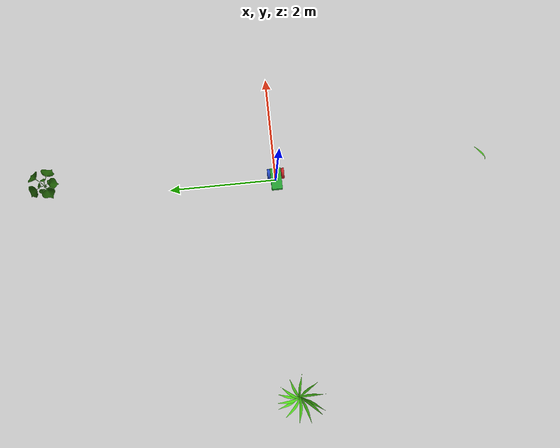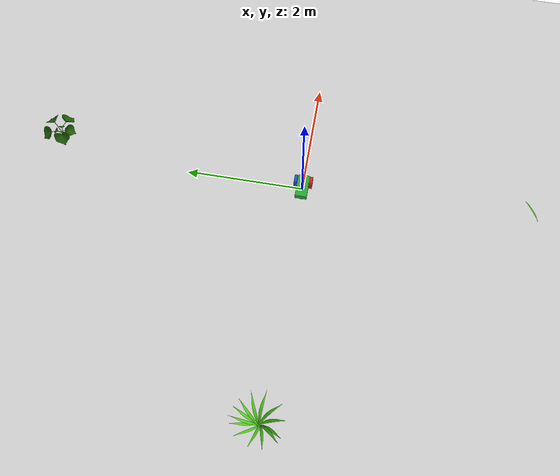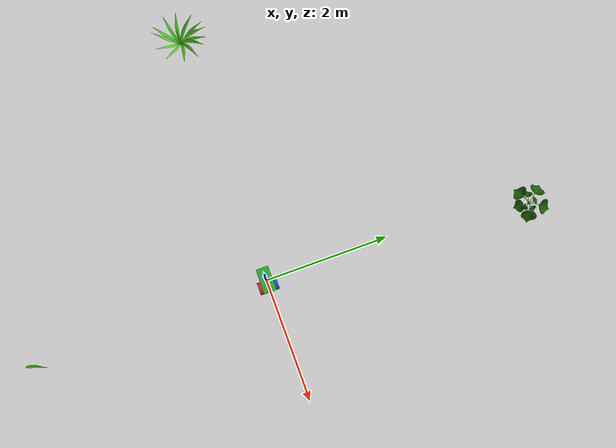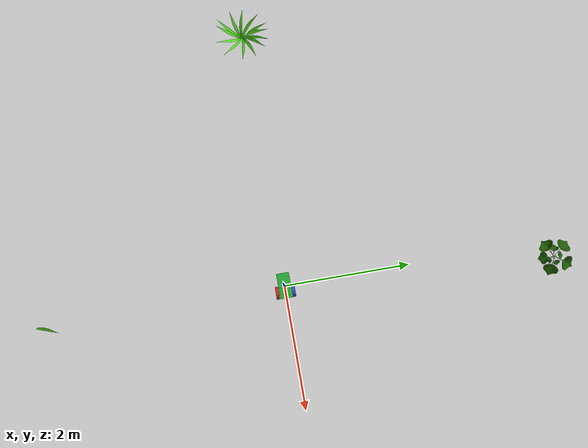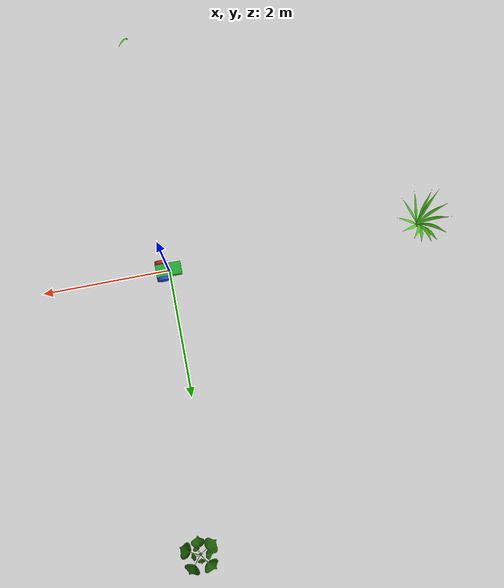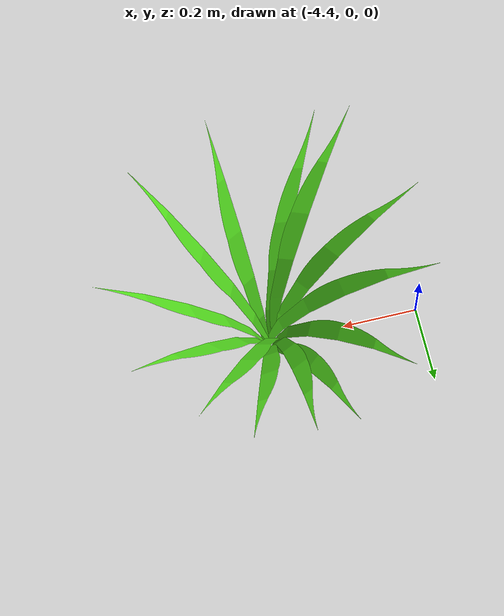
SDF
<sdf version="1.4">
 <world name="default">
  <include><uri>model://my_ground_plane</uri></include>
  <include><uri>model://sun</uri></include>
  <include><uri>model://plant_2</uri><pose>-4 0 0 0 0 0</pose></include>
  <include><uri>model://plant_3</uri><pose>0 4 0 0 0 0</pose></include>
  <include><uri>model://plant_2_single</uri><pose>0 -4 0 0 0 0</pose></include>
  <include><uri>model://simple_vehicle</uri><name>simple_vehicle1</name></include>
 </world>
</sdf>

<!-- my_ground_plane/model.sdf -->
<sdf version="1.7">
<model name="my_ground_plane">
  <static>true</static>
    <link name="link">
      <collision name="collision">
        <geometry>
          <plane>
            <normal>0 0 1</normal>
            <size>20 20</size>
          </plane>
        </geometry>
        <surface>
          <friction>
            <ode>
              <mu>100</mu>
              <mu2>50</mu2>
            </ode>
          </friction>
        </surface>
      </collision>
      <visual name="visual">
        <cast_shadows>false</cast_shadows>
        <geometry>
          <plane>
            <normal>0 0 1</normal>
            <size>20 20</size>
          </plane>
        </geometry>
        <material>
          <script>
            <uri>model://my_ground_plane/materials/scripts</uri>
            <uri>model://my_ground_plane/materials/textures/</uri>
            <name>MyGroundPlane/Image</name>
          </script>
        </material>
      </visual>
    </link>
  </model>
</sdf>

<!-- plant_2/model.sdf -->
<sdf version='1.6'>
  <model name='plant_2'>
    <link name='link_2'>
      <pose frame=''>-0.001376 0.005605 -0.013505 0 0 -1.02494</pose>
      <inertial>
        <mass>1</mass>
        <inertia>
          <ixx>0.166667</ixx>
          <ixy>0</ixy>
          <ixz>0</ixz>
          <iyy>0.166667</iyy>
          <iyz>0</iyz>
          <izz>0.166667</izz>
        </inertia>
        <pose frame=''>0 0 0 0 -0 0</pose>
      </inertial>
      <gravity>1</gravity>
      <self_collide>0</self_collide>
      <kinematic>0</kinematic>
      <visual name='visual'>
        <pose frame=''>0 0 0 0 -0 0</pose>
        <geometry>
          <mesh>
            <uri>model://plant_2/meshes/leaf2.dae</uri>
            <scale>1 1 1</scale>
          </mesh>
        </geometry>
        <material>
          <lighting>1</lighting>
          <script>
            <uri>file://media/materials/scripts/gazebo.material</uri>
            <name>Gazebo/Grey</name>
          </script>
          <ambient>0.329 0.87 0.117 1</ambient>
          <diffuse>0.329 0.87 0.117 1</diffuse>
          <specular>0.01 0.01 0.01 1</specular>
          <emissive>0 0 0 1</emissive>
          <shader type='vertex'>
            <normal_map>__default__</normal_map>
          </shader>
        </material>
        <cast_shadows>1</cast_shadows>
        <transparency>0</transparency>
      </visual>
      <collision name='collision'>
        <laser_retro>0</laser_retro>
        <max_contacts>10</max_contacts>
        <pose frame=''>0 0 0 0 -0 0</pose>
        <geometry>
          <mesh>
            <uri>model://plant_2/meshes/leaf2.dae</uri>
            <scale>1 1 1</scale>
          </mesh>
        </geometry>
         </collision>
    </link>
    <link name='link_2_clone'>
      <pose frame=''>-0.010482 -0.011155 -0.013505 0 -0 0</pose>
          <visual name='visual'>
        <pose frame=''>0 0 0 0 -0 0</pose>
        <geometry>
          <mesh>
            <uri>model://plant_2/meshes/leaf2.dae</uri>
            <scale>1 1 1</scale>
          </mesh>
        </geometry>
        <material>
          <lighting>1</lighting>
          <script>
            <uri>file://media/materials/scripts/gazebo.material</uri>
            <name>Gazebo/Grey</name>
          </script>
          <ambient>0.329 0.87 0.117 1</ambient>
          <diffuse>0.329 0.87 0.117 1</diffuse>
          <specular>0.01 0.01 0.01 1</specular>
          <emissive>0 0 0 1</emissive>
          <shader type='vertex'>
            <normal_map>__default__</normal_map>
          </shader>
        </material>
        <cast_shadows>1</cast_shadows>
        <transparency>0</transparency>
      </visual>
      <collision name='collision'>
        <laser_retro>0</laser_retro>
        <max_contacts>10</max_contacts>
        <pose frame=''>0 0 0 0 -0 0</pose>
        <geometry>
          <mesh>
            <uri>model://plant_2/meshes/leaf2.dae</uri>
            <scale>1 1 1</scale>
          </mesh>
        </geometry>

      </collision>
    </link>
    <link name='link_2_clone_0'>
      <pose frame=''>-0.021848 0.004608 0.021508 0 0 -1.38339</pose>

      <visual name='visual'>
        <pose frame=''>0 0 0 0 -0 0</pose>
        <geometry>
          <mesh>
            <uri>model://plant_2/meshes/leaf2.dae</uri>
            <scale>1 1 1</scale>
          </mesh>
        </geometry>
        <material>
          <lighting>1</lighting>
          <script>
            <uri>file://media/materials/scripts/gazebo.material</uri>
            <name>Gazebo/Grey</name>
          </script>
          <ambient>0.329 0.87 0.117 1</ambient>
          <diffuse>0.329 0.87 0.117 1</diffuse>
          <specular>0.01 0.01 0.01 1</specular>
          <emissive>0 0 0 1</emissive>
          <shader type='vertex'>
            <normal_map>__default__</normal_map>
          </shader>
        </material>
        <cast_shadows>1</cast_shadows>
        <transparency>0</transparency>
      </visual>
      <collision name='collision'>
        <laser_retro>0</laser_retro>
        <max_contacts>10</max_contacts>
        <pose frame=''>0 0 0 0 -0 0</pose>
        <geometry>
          <mesh>
            <uri>model://plant_2/meshes/leaf2.dae</uri>
            <scale>1 1 1</scale>
          </mesh>
        </geometry>

      </collision>
    </link>
    <link name='link_2_clone_clone'>
      <pose frame=''>-0.01336 0.002511 0.005363 0 0 -0.694659</pose>
         <visual name='visual'>
        <pose frame=''>0 0 0 0 -0 0</pose>
        <geometry>
          <mesh>
            <uri>model://plant_2/meshes/leaf2.dae</uri>
            <scale>1 1 1</scale>
          </mesh>
        </geometry>
        <material>
          <lighting>1</lighting>
          <script>
            <uri>file://media/materials/scripts/gazebo.material</uri>
            <name>Gazebo/Grey</name>
          </script>
          <ambient>0.329 0.87 0.117 1</ambient>
          <diffuse>0.329 0.87 0.117 1</diffuse>
          <specular>0.01 0.01 0.01 1</specular>
          <emissive>0 0 0 1</emissive>
          <shader type='vertex'>
            <normal_map>__default__</normal_map>
          </shader>
        </material>
        <cast_shadows>1</cast_shadows>
        <transparency>0</transparency>
      </visual>
      <collision name='collision'>
        <laser_retro>0</laser_retro>
        <max_contacts>10</max_contacts>
        <pose frame=''>0 0 0 0 -0 0</pose>
        <geometry>
          <mesh>
            <uri>model://plant_2/meshes/leaf2.dae</uri>
            <scale>1 1 1</scale>
          </mesh>
        </geometry>
         </collision>
    </link>
    <link name='link_2_clone_clone_0'>
      <pose frame=''>0.003499 -0.00937 -0.013505 0 -0 1.94467</pose>
         <visual name='visual'>
        <pose frame=''>0 0 0 0 -0 0</pose>
        <geometry>
          <mesh>
            <uri>model://plant_2/meshes/leaf2.dae</uri>
            <scale>1 1 1</scale>
          </mesh>
        </geometry>
        <material>
          <lighting>1</lighting>
          <script>
            <uri>file://media/materials/scripts/gazebo.material</uri>
            <name>Gazebo/Grey</name>
          </script>
          <ambient>0.329 0.87 0.117 1</ambient>
          <diffuse>0.329 0.87 0.117 1</diffuse>
          <specular>0.01 0.01 0.01 1</specular>
          <emissive>0 0 0 1</emissive>
          <shader type='vertex'>
            <normal_map>__default__</normal_map>
          </shader>
        </material>
        <cast_shadows>1</cast_shadows>
        <transparency>0</transparency>
      </visual>
      <collision name='collision'>
        <laser_retro>0</laser_retro>
        <max_contacts>10</max_contacts>
        <pose frame=''>0 0 0 0 -0 0</pose>
        <geometry>
          <mesh>
            <uri>model://plant_2/meshes/leaf2.dae</uri>
            <scale>1 1 1</scale>
          </mesh>
        </geometry>
        </collision>
    </link>
    <link name='link_2_clone_clone_0_clone'>
      <pose frame=''>0.015142 -0.010468 -0.013505 0 -0 0.664816</pose>
         <visual name='visual'>
        <pose frame=''>0 0 0 0 -0 0</pose>
        <geometry>
          <mesh>
            <uri>model://plant_2/meshes/leaf2.dae</uri>
            <scale>1 1 1</scale>
          </mesh>
        </geometry>
        <material>
          <lighting>1</lighting>
          <script>
            <uri>file://media/materials/scripts/gazebo.material</uri>
            <name>Gazebo/Grey</name>
          </script>
          <ambient>0.329 0.87 0.117 1</ambient>
          <diffuse>0.329 0.87 0.117 1</diffuse>
          <specular>0.01 0.01 0.01 1</specular>
          <emissive>0 0 0 1</emissive>
          <shader type='vertex'>
            <normal_map>__default__</normal_map>
          </shader>
        </material>
        <cast_shadows>1</cast_shadows>
        <transparency>0</transparency>
      </visual>
      <collision name='collision'>
        <laser_retro>0</laser_retro>
        <max_contacts>10</max_contacts>
        <pose frame=''>0 0 0 0 -0 0</pose>
        <geometry>
          <mesh>
            <uri>model://plant_2/meshes/leaf2.dae</uri>
            <scale>1 1 1</scale>
          </mesh>
        </geometry>
        </collision>
    </link>
    <link name='link_2_clone_clone_0_clone_0'>
      <pose frame=''>0.005268 -0.011592 -0.013505 0 -0 1.1754</pose>
        <visual name='visual'>
        <pose frame=''>0 0 0 0 -0 0</pose>
        <geometry>
          <mesh>
            <uri>model://plant_2/meshes/leaf2.dae</uri>
            <scale>1 1 1</scale>
          </mesh>
        </geometry>
        <material>
          <lighting>1</lighting>
          <script>
            <uri>file://media/materials/scripts/gazebo.material</uri>
            <name>Gazebo/Grey</name>
          </script>
          <ambient>0.329 0.87 0.117 1</ambient>
          <diffuse>0.329 0.87 0.117 1</diffuse>
          <specular>0.01 0.01 0.01 1</specular>
          <emissive>0 0 0 1</emissive>
          <shader type='vertex'>
            <normal_map>__default__</normal_map>
          </shader>
        </material>
        <cast_shadows>1</cast_shadows>
        <transparency>0</transparency>
      </visual>
      <collision name='collision'>
        <laser_retro>0</laser_retro>
        <max_contacts>10</max_contacts>
        <pose frame=''>0 0 0 0 -0 0</pose>
        <geometry>
          <mesh>
            <uri>model://plant_2/meshes/leaf2.dae</uri>
            <scale>1 1 1</scale>
          </mesh>
        </geometry>
         </collision>
    </link>
    <link name='link_2_clone_clone_0_clone_1'>
      <pose frame=''>0.01152 0.011389 -0.013505 0 -0 2.57921</pose>
       <visual name='visual'>
        <pose frame=''>0 0 0 0 -0 0</pose>
        <geometry>
          <mesh>
            <uri>model://plant_2/meshes/leaf2.dae</uri>
            <scale>1 1 1</scale>
          </mesh>
        </geometry>
        <material>
          <lighting>1</lighting>
          <script>
            <uri>file://media/materials/scripts/gazebo.material</uri>
            <name>Gazebo/Grey</name>
          </script>
          <ambient>0.329 0.87 0.117 1</ambient>
          <diffuse>0.329 0.87 0.117 1</diffuse>
          <specular>0.01 0.01 0.01 1</specular>
          <emissive>0 0 0 1</emissive>
          <shader type='vertex'>
            <normal_map>__default__</normal_map>
          </shader>
        </material>
        <cast_shadows>1</cast_shadows>
        <transparency>0</transparency>
      </visual>
      <collision name='collision'>
        <laser_retro>0</laser_retro>
        <max_contacts>10</max_contacts>
        <pose frame=''>0 0 0 0 -0 0</pose>
        <geometry>
          <mesh>
            <uri>model://plant_2/meshes/leaf2.dae</uri>
            <scale>1 1 1</scale>
          </mesh>
        </geometry>
      </collision>
    </link>
    <link name='link_2_clone_clone_0_clone_1_clone'>
      <pose frame=''>0.004356 0.008872 0.002073 0 -0 -2.39264</pose>
        <visual name='visual'>
        <pose frame=''>0 0 0 0 -0 0</pose>
        <geometry>
          <mesh>
            <uri>model://plant_2/meshes/leaf2.dae</uri>
            <scale>1 1 1</scale>
          </mesh>
        </geometry>
        <material>
          <lighting>1</lighting>
          <script>
            <uri>file://media/materials/scripts/gazebo.material</uri>
            <name>Gazebo/Grey</name>
          </script>
          <ambient>0.329 0.87 0.117 1</ambient>
          <diffuse>0.329 0.87 0.117 1</diffuse>
          <specular>0.01 0.01 0.01 1</specular>
          <emissive>0 0 0 1</emissive>
          <shader type='vertex'>
            <normal_map>__default__</normal_map>
          </shader>
        </material>
        <cast_shadows>1</cast_shadows>
        <transparency>0</transparency>
      </visual>
      <collision name='collision'>
        <laser_retro>0</laser_retro>
        <max_contacts>10</max_contacts>
        <pose frame=''>0 0 0 0 -0 0</pose>
        <geometry>
          <mesh>
            <uri>model://plant_2/meshes/leaf2.dae</uri>
            <scale>1 1 1</scale>
          </mesh>
        </geometry>
       </collision>
    </link>
    <link name='link_2_clone_clone_0_clone_1_clone_0'>
      <pose frame=''>-0.007339 0.006471 -0.013505 0 -0 -1.8484</pose>
        <visual name='visual'>
        <pose frame=''>0 0 0 0 -0 0</pose>
        <geometry>
          <mesh>
            <uri>model://plant_2/meshes/leaf2.dae</uri>
            <scale>1 1 1</scale>
          </mesh>
        </geometry>
        <material>
          <lighting>1</lighting>
          <script>
            <uri>file://media/materials/scripts/gazebo.material</uri>
            <name>Gazebo/Grey</name>
          </script>
          <ambient>0.329 0.87 0.117 1</ambient>
          <diffuse>0.329 0.87 0.117 1</diffuse>
          <specular>0.01 0.01 0.01 1</specular>
          <emissive>0 0 0 1</emissive>
          <shader type='vertex'>
            <normal_map>__default__</normal_map>
          </shader>
        </material>
        <cast_shadows>1</cast_shadows>
        <transparency>0</transparency>
      </visual>
      <collision name='collision'>
        <laser_retro>0</laser_retro>
        <max_contacts>10</max_contacts>
        <pose frame=''>0 0 0 0 -0 0</pose>
        <geometry>
          <mesh>
            <uri>model://plant_2/meshes/leaf2.dae</uri>
            <scale>1 1 1</scale>
          </mesh>
        </geometry>
       </collision>
    </link>
    <link name='link_2_clone_clone_0_clone_1_clone_1'>
      <pose frame=''>0.007948 0.011768 0.03025 0 -0 -3.12431</pose>
        <visual name='visual'>
        <pose frame=''>0 0 0 0 -0 0</pose>
        <geometry>
          <mesh>
            <uri>model://plant_2/meshes/leaf2.dae</uri>
            <scale>1 1 1</scale>
          </mesh>
        </geometry>
        <material>
          <lighting>1</lighting>
          <script>
            <uri>file://media/materials/scripts/gazebo.material</uri>
            <name>Gazebo/Grey</name>
          </script>
          <ambient>0.329 0.87 0.117 1</ambient>
          <diffuse>0.329 0.87 0.117 1</diffuse>
          <specular>0.01 0.01 0.01 1</specular>
          <emissive>0 0 0 1</emissive>
          <shader type='vertex'>
            <normal_map>__default__</normal_map>
          </shader>
        </material>
        <cast_shadows>1</cast_shadows>
        <transparency>0</transparency>
      </visual>
      <collision name='collision'>
        <laser_retro>0</laser_retro>
        <max_contacts>10</max_contacts>
        <pose frame=''>0 0 0 0 -0 0</pose>
        <geometry>
          <mesh>
            <uri>model://plant_2/meshes/leaf2.dae</uri>
            <scale>1 1 1</scale>
          </mesh>
        </geometry>
        </collision>
    </link>
    <link name='link_2_clone_clone_0_clone_2'>
      <pose frame=''>-0.002448 -0.020262 0.048804 0 -0 1.74321</pose>
         <visual name='visual'>
        <pose frame=''>0 0 0 0 -0 0</pose>
        <geometry>
          <mesh>
            <uri>model://plant_2/meshes/leaf2.dae</uri>
            <scale>1 1 1</scale>
          </mesh>
        </geometry>
        <material>
          <lighting>1</lighting>
          <script>
            <uri>file://media/materials/scripts/gazebo.material</uri>
            <name>Gazebo/Grey</name>
          </script>
          <ambient>0.329 0.87 0.117 1</ambient>
          <diffuse>0.329 0.87 0.117 1</diffuse>
          <specular>0.01 0.01 0.01 1</specular>
          <emissive>0 0 0 1</emissive>
          <shader type='vertex'>
            <normal_map>__default__</normal_map>
          </shader>
        </material>
        <cast_shadows>1</cast_shadows>
        <transparency>0</transparency>
      </visual>
      <collision name='collision'>
        <laser_retro>0</laser_retro>
        <max_contacts>10</max_contacts>
        <pose frame=''>0 0 0 0 -0 0</pose>
        <geometry>
          <mesh>
            <uri>model://plant_2/meshes/leaf2.dae</uri>
            <scale>1 1 1</scale>
          </mesh>
        </geometry>
       </collision>
    </link>
    <link name='link_2_clone_clone_clone'>
      <pose frame=''>0.009442 0.011493 -0.013505 0 0 -0.389083</pose>
         <visual name='visual'>
        <pose frame=''>0 0 0 0 -0 0</pose>
        <geometry>
          <mesh>
            <uri>model://plant_2/meshes/leaf2.dae</uri>
            <scale>1 1 1</scale>
          </mesh>
        </geometry>
        <material>
          <lighting>1</lighting>
          <script>
            <uri>file://media/materials/scripts/gazebo.material</uri>
            <name>Gazebo/Grey</name>
          </script>
          <ambient>0.329 0.87 0.117 1</ambient>
          <diffuse>0.329 0.87 0.117 1</diffuse>
          <specular>0.01 0.01 0.01 1</specular>
          <emissive>0 0 0 1</emissive>
          <shader type='vertex'>
            <normal_map>__default__</normal_map>
          </shader>
        </material>
        <cast_shadows>1</cast_shadows>
        <transparency>0</transparency>
      </visual>
      <collision name='collision'>
        <laser_retro>0</laser_retro>
        <max_contacts>10</max_contacts>
        <pose frame=''>0 0 0 0 -0 0</pose>
        <geometry>
          <mesh>
            <uri>model://plant_2/meshes/leaf2.dae</uri>
            <scale>1 1 1</scale>
          </mesh>
        </geometry>
        </collision>
    </link>
    <static>1</static>
    <allow_auto_disable>1</allow_auto_disable>
  </model>
</sdf>

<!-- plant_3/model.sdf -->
<sdf version='1.6'>
  <model name='plant_3'>
    <link name='link_1'>
      <pose frame=''>-0.00034 0 0 0 -0 0</pose>
        <visual name='visual'>
         <geometry>
          <mesh>
		<uri>model://plant_3/meshes/plant.dae</uri>
              <scale>1 1 1</scale>
          </mesh>
        </geometry>
        <material>
          <lighting>1</lighting>
           <ambient>0.109 0.345 0.015 1</ambient>
          <diffuse>0.109 0.345 0.015 1</diffuse>
          <specular>0.01 0.01 0.01 1</specular>
          <emissive>0 0 0 1</emissive>
          <shader type='vertex'>
            <normal_map>__default__</normal_map>
          </shader>
        </material>
        <cast_shadows>1</cast_shadows>
        <transparency>0</transparency>
      </visual>

    <collision name='collision'>
        <laser_retro>0</laser_retro>
        <max_contacts>10</max_contacts>
         <geometry>
          <mesh>
            <uri>model://plant_3/meshes/plant.dae</uri>
            <scale>1 1 1</scale>
          </mesh>
        </geometry>
      </collision>
    </link>
    <static>1</static>
    <allow_auto_disable>1</allow_auto_disable>
  </model>
</sdf>

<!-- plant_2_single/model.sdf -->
<sdf version='1.6'>
  <model name='plant_2_single'>
    <link name='link_2'>
      <pose frame=''>-0.001376 0.005605 -0.013505 0 0 -1.02494</pose>
      <inertial>
        <mass>1</mass>
        <inertia>
          <ixx>0.166667</ixx>
          <ixy>0</ixy>
          <ixz>0</ixz>
          <iyy>0.166667</iyy>
          <iyz>0</iyz>
          <izz>0.166667</izz>
        </inertia>
        <pose frame=''>0 0 0 0 -0 0</pose>
      </inertial>
      <gravity>1</gravity>
      <self_collide>0</self_collide>
      <kinematic>0</kinematic>
      <visual name='visual'>
        <pose frame=''>0 0 0 0 -0 0</pose>
        <geometry>
          <mesh>
            <uri>model://plant_2/meshes/leaf2.dae</uri>
            <scale>1 1 1</scale>
          </mesh>
        </geometry>
        <material>
          <lighting>1</lighting>
          <script>
            <uri>file://media/materials/scripts/gazebo.material</uri>
            <name>Gazebo/Grey</name>
          </script>
          <ambient>0.329 0.87 0.117 1</ambient>
          <diffuse>0.329 0.87 0.117 1</diffuse>
          <specular>0.01 0.01 0.01 1</specular>
          <emissive>0 0 0 1</emissive>
          <shader type='vertex'>
            <normal_map>__default__</normal_map>
          </shader>
        </material>
        <cast_shadows>1</cast_shadows>
        <transparency>0</transparency>
      </visual>
      <collision name='collision'>
        <laser_retro>0</laser_retro>
        <max_contacts>10</max_contacts>
        <pose frame=''>0 0 0 0 -0 0</pose>
        <geometry>
          <mesh>
            <uri>model://plant_2/meshes/leaf2.dae</uri>
            <scale>1 1 1</scale>
          </mesh>
        </geometry>
         </collision>
    </link>

    <static>1</static>
    <allow_auto_disable>1</allow_auto_disable>
  </model>
</sdf>

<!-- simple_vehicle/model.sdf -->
<sdf version='1.4'>
  <model name="simple_vehicle">
        <static>0</static>
        <!-- Give the base link a unique name -->
        <link name="vehicle_body">

            <!-- Offset the base by half the lenght of the cylinder -->
            <pose>0 0 0.1 0 0 0</pose>
            <inertial>
              <mass>1.0</mass>
              <inertia>
                <ixx>0.0006</ixx>
                <iyy>0.0006</iyy>
                <izz>0.0006</izz>
                <ixy>0</ixy>
                <ixz>0</ixz>
                <iyz>0</iyz>
              </inertia>
            </inertial>

            <collision name="vehicle_body_collision">
              <geometry>
        				<box>
        					<size>0.4 0.2 0.1</size>
        				</box>
        			</geometry>
                <surface>
		<friction>
		<ode>
		    <mu>0.0</mu>
		    <mu2>0.0</mu2>
		</ode>
		</friction>
		<contact>
		<ode>
		   <kp>1000000.0</kp>
		   <kd>1000000.0</kd>
		   <min_depth>0</min_depth>
		</ode>
		</contact>
	      </surface>
            </collision>

            <!-- The visual is mostly a copy of the collision -->
            <visual name="vehicle_body_visual">
              <geometry>
        				<box>
        					<size>0.4 0.2 0.1</size>
        				</box>
        			</geometry>
              <material>
                <script>
                  <uri>file://media/materials/scripts/gazebo.material</uri>
                  <name>Gazebo/Green</name>
                </script>
              </material>
            </visual>
            <collision name="caster_collision">
        			<pose>-0.15 0 -0.05 0 0 0</pose>
        			<geometry>
        				<sphere>
        					<radius>0.05</radius>
        				</sphere>
        			</geometry>
        		<surface>
        			<friction>
        				<ode>
        					<mu>0</mu>
        					<mu2>0</mu2>
        					<slip1>1.0</slip1>
        					<slip2>1.0</slip2>
        				</ode>
        			</friction>
        		</surface>
        	</collision>
        		<visual name="caster_visual">
        			<pose>-0.15 0 -0.05 0 0 0</pose>
        			<geometry>
        				<sphere>
        					<radius>0.05</radius>
        				</sphere>
        			</geometry>
        		</visual>
        </link>

        <!-- Give the base link a unique name -->
        <link name="left_wheel">

            <!-- Vertically offset the top cylinder by the length of the bottom
                cylinder and half the length of this cylinder. -->
            <pose>0.1 0.13 0.1 0 1.5707 1.5707</pose>

            <inertial>
              <mass>0.1</mass>
              <inertia>
                <ixx>2.33333333333e-05</ixx>
                <iyy>2.33333333333e-05</iyy>
                <izz>4.5e-05</izz>
                <ixy>0</ixy>
                <ixz>0</ixz>
                <iyz>0</iyz>
              </inertia>
            </inertial>

            <collision name="left_wheel_collision">
              <geometry>
                <cylinder>
                  <!-- Radius and length provided by Velodyne -->
                  <radius>0.1</radius>
                  <length>0.05</length>
                </cylinder>
              </geometry>
              <surface>
		<friction>
		<ode>
		    <mu>30.0</mu>
		    <mu2>30.0</mu2>
		</ode>
		</friction>
		<contact>
		<ode>
		   <kp>1000000.0</kp>
		   <kd>1000000.0</kd>
		   <min_depth>0.0</min_depth>
		</ode>
		</contact>
	      </surface>
            </collision>

            <!-- The visual is mostly a copy of the collision -->
            <visual name="left_wheel_visual">
              <geometry>
                <cylinder>
                  <radius>0.1</radius>
                  <length>0.05</length>
                </cylinder>
              </geometry>
              <material>
                <script>
                  <uri>file://media/materials/scripts/gazebo.material</uri>
                  <name>Gazebo/Blue</name>
                </script>
              </material>
            </visual>
        </link>

	<!-- Give the base link a unique name -->
        <link name="right_wheel">

            <!-- Vertically offset the top cylinder by the length of the bottom
                cylinder and half the length of this cylinder. -->
            <pose>0.1 -0.13 0.1 0 1.5707 1.5707</pose>

            <inertial>
              <mass>0.1</mass>
              <inertia>
                <ixx>2.33333333333e-05</ixx>
                <iyy>2.33333333333e-05</iyy>
                <izz>4.5e-05</izz>
                <ixy>0</ixy>
                <ixz>0</ixz>
                <iyz>0</iyz>
              </inertia>
            </inertial>

            <collision name="right_wheel_collision">
              <geometry>
                <cylinder>
                  <!-- Radius and length provided by Velodyne -->
                  <radius>0.1</radius>
                  <length>0.05</length>
                </cylinder>
              </geometry>
	      <surface>
		<friction>
		<ode>
		    <mu>30.0</mu>
		    <mu2>30.0</mu2>
		</ode>
		</friction>
		<contact>
		<ode>
		   <kp>1000000.0</kp>
		   <kd>1000000.0</kd>
		   <min_depth>0.0</min_depth>
		</ode>
		</contact>
	      </surface>
            </collision>

            <!-- The visual is mostly a copy of the collision -->
            <visual name="right_wheel_visual">
              <geometry>
                <cylinder>
                  <radius>0.1</radius>
                  <length>0.05</length>
                </cylinder>
              </geometry>
              <material>
                <script>
                  <uri>file://media/materials/scripts/gazebo.material</uri>
                  <name>Gazebo/Red</name>
                </script>
              </material>
            </visual>
        </link>

        <!-- Each joint must have a unique name -->
        <joint type="revolute" name="left_wheel_joint">
        <pose>0 0 -0.03 0 0 0 </pose>
          <parent>vehicle_body</parent>
          <child>left_wheel</child>
          <!-- The axis defines the joint's degree of freedom -->
          <axis>
            <xyz>0 1 0</xyz>
            <!-- Limit refers to the range of motion of the joint -->
            <limit>
              <!-- Use a very large number to indicate a continuous revolution -->
              <lower>-10000000000000000</lower>
              <upper>10000000000000000</upper>
            </limit>
          </axis>
        </joint>

        <!-- Each joint must have a unique name -->
        <joint type="revolute" name="right_wheel_joint">
          <pose>0 0 0.03 0 0 0 </pose>
          <parent>vehicle_body</parent>
          <child>right_wheel</child>
          <!-- The axis defines the joint's degree of freedom -->
          <axis>
            <xyz>0 1 0</xyz>
            <!-- Limit refers to the range of motion of the joint -->
            <limit>
              <!-- Use a very large number to indicate a continuous revolution -->
              <lower>-10000000000000000</lower>
              <upper>10000000000000000</upper>
            </limit>
          </axis>
        </joint>

	<plugin name="set_speed_joint_plugin" filename="libset_speed_joint_plugin.so">
		<namespace_model>simple_robot</namespace_model>
		<activate_pid_control>yes</activate_pid_control>
		<wheel_kp>0.1</wheel_kp>
		<wheel_ki>0.0</wheel_ki>
		<wheel_kd>0.0</wheel_kd>
	</plugin>

  </model>
</sdf>
